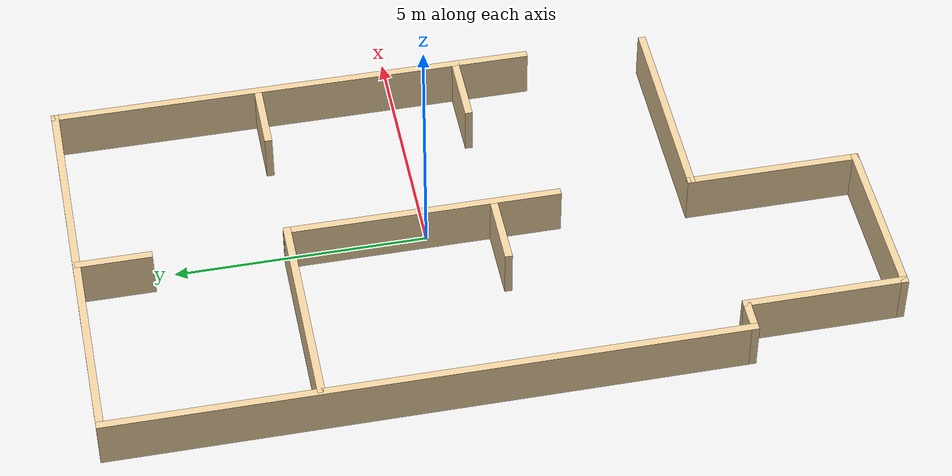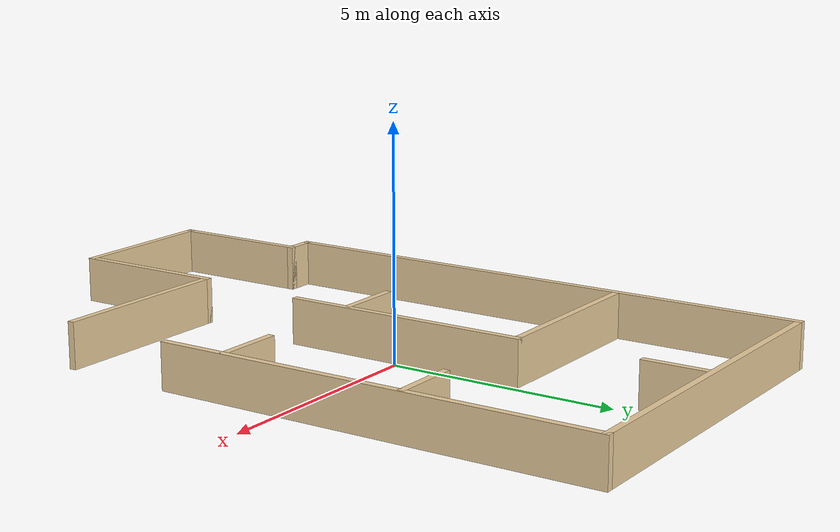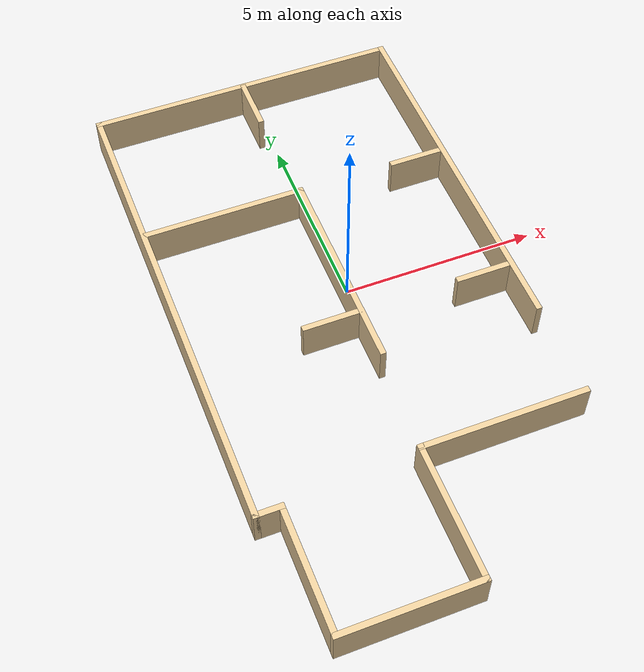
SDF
<?xml version='1.0'?>
<sdf version='1.6'>
  <model name='maze_1'>
    <pose frame=''>-0.277 -0.861 0 0 -0 0</pose>
    <link name='Wall_65'>
      <collision name='Wall_65_Collision'>
        <geometry>
          <box>
            <size>3.5 0.15 1</size>
          </box>
        </geometry>
        <pose frame=''>0 0 0.5 0 -0 0</pose>
      </collision>
      <visual name='Wall_65_Visual'>
        <pose frame=''>0 0 0.5 0 -0 0</pose>
        <geometry>
          <box>
            <size>3.5 0.15 1</size>
          </box>
        </geometry>
        <material>
          <script>
            <uri>file://media/materials/scripts/gazebo.material</uri>
            <name>Gazebo/Grey</name>
          </script>
          <ambient>0.921569 0.807843 0.615686 1</ambient>
        </material>
        <meta>
          <layer>0</layer>
        </meta>
      </visual>
      <pose frame=''>-1.775 -7.725 0 0 -0 0</pose>
    </link>
    <link name='Wall_66'>
      <collision name='Wall_66_Collision'>
        <geometry>
          <box>
            <size>3.5 0.15 1</size>
          </box>
        </geometry>
        <pose frame=''>0 0 0.5 0 -0 0</pose>
      </collision>
      <visual name='Wall_66_Visual'>
        <pose frame=''>0 0 0.5 0 -0 0</pose>
        <geometry>
          <box>
            <size>3.5 0.15 1</size>
          </box>
        </geometry>
        <material>
          <script>
            <uri>file://media/materials/scripts/gazebo.material</uri>
            <name>Gazebo/Grey</name>
          </script>
          <ambient>0.921569 0.807843 0.615686 1</ambient>
        </material>
        <meta>
          <layer>0</layer>
        </meta>
      </visual>
      <pose frame=''>-0.1 -6.05 0 0 -0 1.5708</pose>
    </link>
    <link name='Wall_67'>
      <collision name='Wall_67_Collision'>
        <geometry>
          <box>
            <size>4.25 0.15 1</size>
          </box>
        </geometry>
        <pose frame=''>0 0 0.5 0 -0 0</pose>
      </collision>
      <visual name='Wall_67_Visual'>
        <pose frame=''>0 0 0.5 0 -0 0</pose>
        <geometry>
          <box>
            <size>4.25 0.15 1</size>
          </box>
        </geometry>
        <material>
          <script>
            <uri>file://media/materials/scripts/gazebo.material</uri>
            <name>Gazebo/Grey</name>
          </script>
          <ambient>0.921569 0.807843 0.615686 1</ambient>
        </material>
        <meta>
          <layer>0</layer>
        </meta>
      </visual>
      <pose frame=''>1.95 -4.375 0 0 -0 0</pose>
    </link>
    <link name='Wall_69'>
      <collision name='Wall_69_Collision'>
        <geometry>
          <box>
            <size>3.25 0.15 1</size>
          </box>
        </geometry>
        <pose frame=''>0 0 0.5 0 -0 0</pose>
      </collision>
      <visual name='Wall_69_Visual'>
        <pose frame=''>0 0 0.5 0 -0 0</pose>
        <geometry>
          <box>
            <size>3.25 0.15 1</size>
          </box>
        </geometry>
        <material>
          <script>
            <uri>file://media/materials/scripts/gazebo.material</uri>
            <name>Gazebo/Grey</name>
          </script>
          <ambient>0.921569 0.807843 0.615686 1</ambient>
        </material>
        <meta>
          <layer>0</layer>
        </meta>
      </visual>
      <pose frame=''>-3.45 -6.175 0 0 -0 1.5708</pose>
    </link>
    <link name='Wall_72'>
      <collision name='Wall_72_Collision'>
        <geometry>
          <box>
            <size>0.75 0.15 1</size>
          </box>
        </geometry>
        <pose frame=''>0 0 0.5 0 -0 0</pose>
      </collision>
      <visual name='Wall_72_Visual'>
        <pose frame=''>0 0 0.5 0 -0 0</pose>
        <geometry>
          <box>
            <size>0.75 0.15 1</size>
          </box>
        </geometry>
        <material>
          <script>
            <uri>file://media/materials/scripts/gazebo.material</uri>
            <name>Gazebo/Grey</name>
          </script>
          <ambient>0.921569 0.807843 0.615686 1</ambient>
        </material>
        <meta>
          <layer>0</layer>
        </meta>
      </visual>
      <pose frame=''>-3.75 -4.625 0 0 -0 3.14159</pose>
    </link>
    <link name='Wall_73'>
      <collision name='Wall_73_Collision'>
        <geometry>
          <box>
            <size>12.5 0.15 1</size>
          </box>
        </geometry>
        <pose frame=''>0 0 0.5 0 -0 0</pose>
      </collision>
      <visual name='Wall_73_Visual'>
        <pose frame=''>0 0 0.5 0 -0 0</pose>
        <geometry>
          <box>
            <size>12.5 0.15 1</size>
          </box>
        </geometry>
        <material>
          <script>
            <uri>file://media/materials/scripts/gazebo.material</uri>
            <name>Gazebo/Grey</name>
          </script>
          <ambient>0.921569 0.807843 0.615686 1</ambient>
        </material>
        <meta>
          <layer>0</layer>
        </meta>
      </visual>
      <pose frame=''>-4.05 1.55 0 0 -0 1.5708</pose>
    </link>
    <link name='Wall_74'>
      <collision name='Wall_74_Collision'>
        <geometry>
          <box>
            <size>8.25 0.15 1</size>
          </box>
        </geometry>
        <pose frame=''>0 0 0.5 0 -0 0</pose>
      </collision>
      <visual name='Wall_74_Visual'>
        <pose frame=''>0 0 0.5 0 -0 0</pose>
        <geometry>
          <box>
            <size>8.25 0.15 1</size>
          </box>
        </geometry>
        <material>
          <script>
            <uri>file://media/materials/scripts/gazebo.material</uri>
            <name>Gazebo/Grey</name>
          </script>
          <ambient>0.921569 0.807843 0.615686 1</ambient>
        </material>
        <meta>
          <layer>0</layer>
        </meta>
      </visual>
      <pose frame=''>0 7.725 0 0 -0 0</pose>
    </link>
    <link name='Wall_75'>
      <collision name='Wall_75_Collision'>
        <geometry>
          <box>
            <size>9.75 0.15 1</size>
          </box>
        </geometry>
        <pose frame=''>0 0 0.5 0 -0 0</pose>
      </collision>
      <visual name='Wall_75_Visual'>
        <pose frame=''>0 0 0.5 0 -0 0</pose>
        <geometry>
          <box>
            <size>9.75 0.15 1</size>
          </box>
        </geometry>
        <material>
          <script>
            <uri>file://media/materials/scripts/gazebo.material</uri>
            <name>Gazebo/Grey</name>
          </script>
          <ambient>0.921569 0.807843 0.615686 1</ambient>
        </material>
        <meta>
          <layer>0</layer>
        </meta>
      </visual>
      <pose frame=''>4.05 2.925 0 0 -0 -1.5708</pose>
    </link>
    <link name='Wall_77'>
      <collision name='Wall_77_Collision'>
        <geometry>
          <box>
            <size>1.5 0.15 1</size>
          </box>
        </geometry>
        <pose frame=''>0 0 0.5 0 -0 0</pose>
      </collision>
      <visual name='Wall_77_Visual'>
        <pose frame=''>0 0 0.5 0 -0 0</pose>
        <geometry>
          <box>
            <size>1.5 0.15 1</size>
          </box>
        </geometry>
        <material>
          <script>
            <uri>file://media/materials/scripts/gazebo.material</uri>
            <name>Gazebo/Grey</name>
          </script>
          <ambient>0.921569 0.807843 0.615686 1</ambient>
        </material>
        <meta>
          <layer>0</layer>
        </meta>
      </visual>
      <pose frame=''>3.331 -0.452 0 0 -0 3.14159</pose>
    </link>
    <link name='Wall_79'>
      <collision name='Wall_79_Collision'>
        <geometry>
          <box>
            <size>1.5 0.15 1</size>
          </box>
        </geometry>
        <pose frame=''>0 0 0.5 0 -0 0</pose>
      </collision>
      <visual name='Wall_79_Visual'>
        <pose frame=''>0 0 0.5 0 -0 0</pose>
        <geometry>
          <box>
            <size>1.5 0.15 1</size>
          </box>
        </geometry>
        <material>
          <script>
            <uri>file://media/materials/scripts/gazebo.material</uri>
            <name>Gazebo/Grey</name>
          </script>
          <ambient>0.921569 0.807843 0.615686 1</ambient>
        </material>
        <meta>
          <layer>0</layer>
        </meta>
      </visual>
      <pose frame=''>3.332 3.618 0 0 -0 3.14159</pose>
    </link>
    <link name='Wall_81'>
      <collision name='Wall_81_Collision'>
        <geometry>
          <box>
            <size>1.5 0.15 1</size>
          </box>
        </geometry>
        <pose frame=''>0 0 0.5 0 -0 0</pose>
      </collision>
      <visual name='Wall_81_Visual'>
        <pose frame=''>0 0 0.5 0 -0 0</pose>
        <geometry>
          <box>
            <size>1.5 0.15 1</size>
          </box>
        </geometry>
        <material>
          <script>
            <uri>file://media/materials/scripts/gazebo.material</uri>
            <name>Gazebo/Grey</name>
          </script>
          <ambient>0.921569 0.807843 0.615686 1</ambient>
        </material>
        <meta>
          <layer>0</layer>
        </meta>
      </visual>
      <pose frame=''>-0.02 7.01178 0 0 -0 -1.5708</pose>
    </link>
    <link name='Wall_83'>
      <collision name='Wall_83_Collision'>
        <geometry>
          <box>
            <size>4.25 0.15 1</size>
          </box>
        </geometry>
        <pose frame=''>0 0 0.5 0 -0 0</pose>
      </collision>
      <visual name='Wall_83_Visual'>
        <pose frame=''>0 0 0.5 0 -0 0</pose>
        <geometry>
          <box>
            <size>4.25 0.15 1</size>
          </box>
        </geometry>
        <material>
          <script>
            <uri>file://media/materials/scripts/gazebo.material</uri>
            <name>Gazebo/Grey</name>
          </script>
          <ambient>0.921569 0.807843 0.615686 1</ambient>
        </material>
        <meta>
          <layer>0</layer>
        </meta>
      </visual>
      <pose frame=''>-1.951 3.625 0 0 -0 0</pose>
    </link>
    <link name='Wall_84'>
      <collision name='Wall_84_Collision'>
        <geometry>
          <box>
            <size>5.5 0.15 1</size>
          </box>
        </geometry>
        <pose frame=''>0 0 0.5 0 -0 0</pose>
      </collision>
      <visual name='Wall_84_Visual'>
        <pose frame=''>0 0 0.5 0 -0 0</pose>
        <geometry>
          <box>
            <size>5.5 0.15 1</size>
          </box>
        </geometry>
        <material>
          <script>
            <uri>file://media/materials/scripts/gazebo.material</uri>
            <name>Gazebo/Grey</name>
          </script>
          <ambient>0.921569 0.807843 0.615686 1</ambient>
        </material>
        <meta>
          <layer>0</layer>
        </meta>
      </visual>
      <pose frame=''>0.099 0.95 0 0 -0 -1.5708</pose>
    </link>
    <link name='Wall_88'>
      <collision name='Wall_88_Collision'>
        <geometry>
          <box>
            <size>1.5 0.15 1</size>
          </box>
        </geometry>
        <pose frame=''>0 0 0.5 0 -0 0</pose>
      </collision>
      <visual name='Wall_88_Visual'>
        <pose frame=''>0 0 0.5 0 -0 0</pose>
        <geometry>
          <box>
            <size>1.5 0.15 1</size>
          </box>
        </geometry>
        <material>
          <script>
            <uri>file://media/materials/scripts/gazebo.material</uri>
            <name>Gazebo/Grey</name>
          </script>
          <ambient>0.921569 0.807843 0.615686 1</ambient>
        </material>
        <meta>
          <layer>0</layer>
        </meta>
      </visual>
      <pose frame=''>-0.656 -0.449 0 0 -0 3.14159</pose>
    </link>
    <static>1</static>
  </model>
</sdf>
